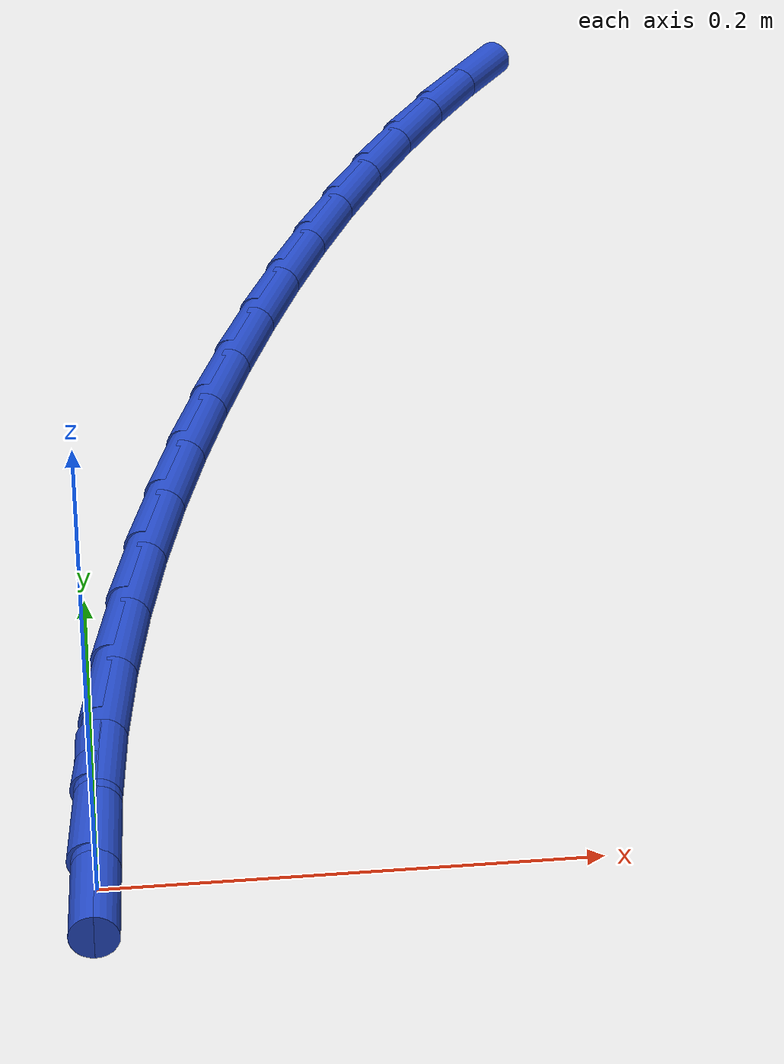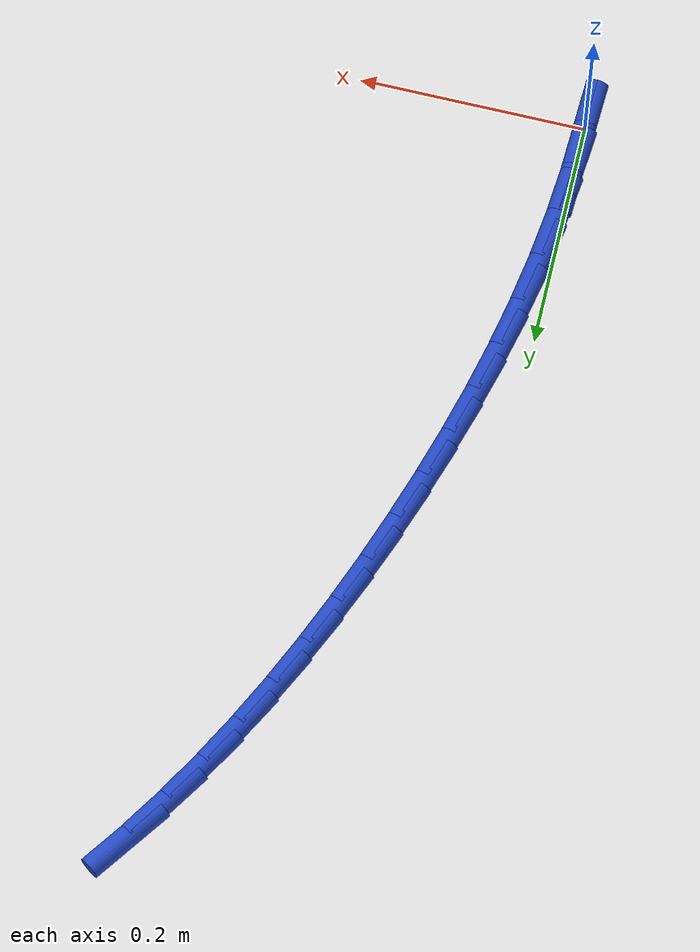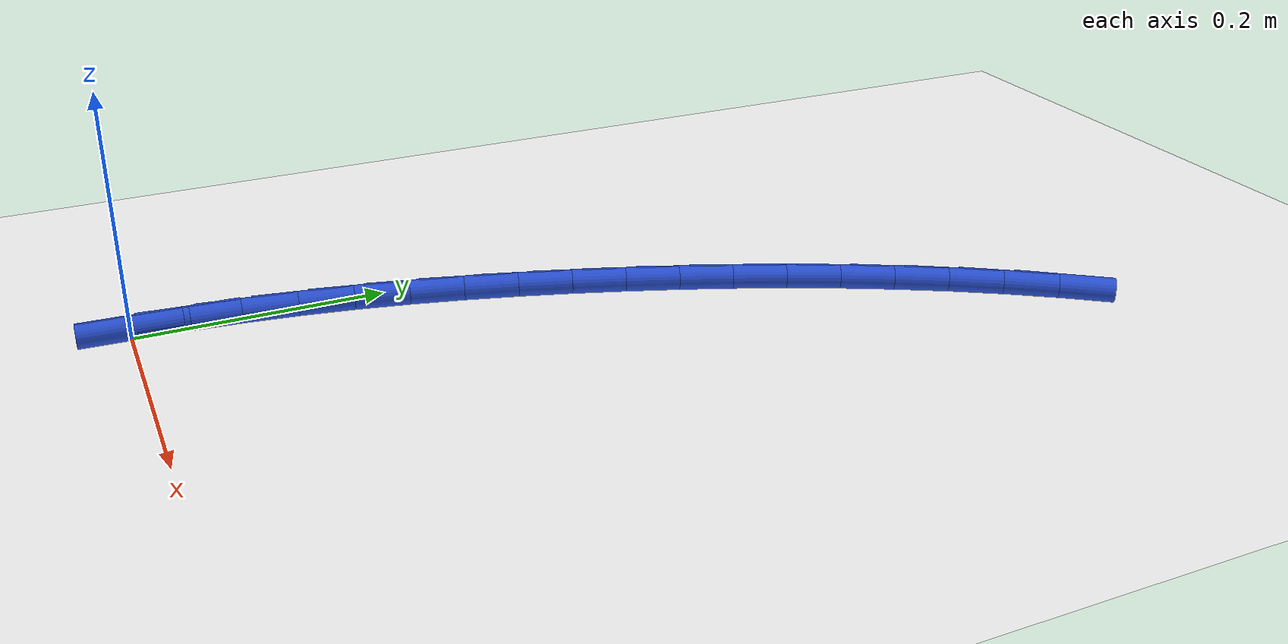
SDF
<sdf version="1.6">
 <world name="default">
  <model name="ground_plane">
   <static>1</static>
   <link name="link">
    <collision name="collision">
     <geometry><plane><normal>0 0 1</normal><size>100 100</size></plane></geometry>
     <surface><friction><ode><mu>100</mu><mu2>50</mu2></ode></friction></surface>
    </collision>
    <visual name="visual">
     <cast_shadows>0</cast_shadows>
     <geometry><plane><normal>0 0 1</normal><size>100 100</size></plane></geometry>
     <material>
      <script><uri>file://media/materials/scripts/gazebo.material</uri><name>Gazebo/WhiteGlow</name></script>
     </material>
    </visual>
   </link>
  </model>
  <model name="line">
   <link name="link_0">
    <pose>5.0306980803327406e-17 1.3877787807814457e-17 0.01 0 1.57 1.5260147244363123</pose>
    <collision name="collision">
     <geometry><cylinder><radius>0.01</radius><length>0.08</length></cylinder></geometry>
    </collision>
    <visual name="visual">
     <material>
      <script><name>Gazebo/Blue</name><uri>file://media/materials/scripts/gazebo.material</uri></script>
     </material>
     <geometry><cylinder><radius>0.01</radius><length>0.08</length></cylinder></geometry>
    </visual>
   </link>
   <link name="link_1">
    <pose>0.0019904885369562845 0.0444190847222737 0.01 0 1.57 1.4812232621702883</pose>
    <collision name="collision">
     <geometry><cylinder><radius>0.01</radius><length>0.08</length></cylinder></geometry>
    </collision>
    <visual name="visual">
     <material>
      <script><name>Gazebo/Blue</name><uri>file://media/materials/scripts/gazebo.material</uri></script>
     </material>
     <geometry><cylinder><radius>0.01</radius><length>0.08</length></cylinder></geometry>
    </visual>
   </link>
   <link name="link_2">
    <pose>0.005955106309354074 0.08856191898155275 0.01 0 1.57 1.439000569083363</pose>
    <collision name="collision">
     <geometry><cylinder><radius>0.01</radius><length>0.08</length></cylinder></geometry>
    </collision>
    <visual name="visual">
     <material>
      <script><name>Gazebo/Blue</name><uri>file://media/materials/scripts/gazebo.material</uri></script>
     </material>
     <geometry><cylinder><radius>0.01</radius><length>0.08</length></cylinder></geometry>
    </visual>
   </link>
   <link name="link_3">
    <pose>0.011770059089839587 0.13242710110053268 0.01 0 1.57 1.3994675310852336</pose>
    <collision name="collision">
     <geometry><cylinder><radius>0.01</radius><length>0.08</length></cylinder></geometry>
    </collision>
    <visual name="visual">
     <material>
      <script><name>Gazebo/Blue</name><uri>file://media/materials/scripts/gazebo.material</uri></script>
     </material>
     <geometry><cylinder><radius>0.01</radius><length>0.08</length></cylinder></geometry>
    </visual>
   </link>
   <link name="link_4">
    <pose>0.01931155265105896 0.17601322940190903 0.01 0 1.57 1.362697493794268</pose>
    <collision name="collision">
     <geometry><cylinder><radius>0.01</radius><length>0.08</length></cylinder></geometry>
    </collision>
    <visual name="visual">
     <material>
      <script><name>Gazebo/Blue</name><uri>file://media/materials/scripts/gazebo.material</uri></script>
     </material>
     <geometry><cylinder><radius>0.01</radius><length>0.08</length></cylinder></geometry>
    </visual>
   </link>
   <link name="link_5">
    <pose>0.028455792765658367 0.2193189022083774 0.01 0 1.57 1.3287240169238606</pose>
    <collision name="collision">
     <geometry><cylinder><radius>0.01</radius><length>0.08</length></cylinder></geometry>
    </collision>
    <visual name="visual">
     <material>
      <script><name>Gazebo/Blue</name><uri>file://media/materials/scripts/gazebo.material</uri></script>
     </material>
     <geometry><cylinder><radius>0.01</radius><length>0.08</length></cylinder></geometry>
    </visual>
   </link>
   <link name="link_6">
    <pose>0.03907898520628396 0.26234271784263336 0.01 0 1.57 1.2975490997938268</pose>
    <collision name="collision">
     <geometry><cylinder><radius>0.01</radius><length>0.08</length></cylinder></geometry>
    </collision>
    <visual name="visual">
     <material>
      <script><name>Gazebo/Blue</name><uri>file://media/materials/scripts/gazebo.material</uri></script>
     </material>
     <geometry><cylinder><radius>0.01</radius><length>0.08</length></cylinder></geometry>
    </visual>
   </link>
   <link name="link_7">
    <pose>0.0510573357455819 0.30508327462737245 0.01 0 1.57 1.2691512236758864</pose>
    <collision name="collision">
     <geometry><cylinder><radius>0.01</radius><length>0.08</length></cylinder></geometry>
    </collision>
    <visual name="visual">
     <material>
      <script><name>Gazebo/Blue</name><uri>file://media/materials/scripts/gazebo.material</uri></script>
     </material>
     <geometry><cylinder><radius>0.01</radius><length>0.08</length></cylinder></geometry>
    </visual>
   </link>
   <link name="link_8">
    <pose>0.06426705015619832 0.34753917088529 0.01 0 1.57 1.2434890691378662</pose>
    <collision name="collision">
     <geometry><cylinder><radius>0.01</radius><length>0.08</length></cylinder></geometry>
    </collision>
    <visual name="visual">
     <material>
      <script><name>Gazebo/Blue</name><uri>file://media/materials/scripts/gazebo.material</uri></script>
     </material>
     <geometry><cylinder><radius>0.01</radius><length>0.08</length></cylinder></geometry>
    </visual>
   </link>
   <link name="link_9">
    <pose>0.07858448455763797 0.38970893372503573 0.01 0 1.57 1.2192639421745357</pose>
    <collision name="collision">
     <geometry><cylinder><radius>0.01</radius><length>0.08</length></cylinder></geometry>
    </collision>
    <visual name="visual">
     <material>
      <script><name>Gazebo/Blue</name><uri>file://media/materials/scripts/gazebo.material</uri></script>
     </material>
     <geometry><cylinder><radius>0.01</radius><length>0.08</length></cylinder></geometry>
    </visual>
   </link>
   <link name="link_10">
    <pose>0.09393663902727978 0.4315671019845059 0.01 0 1.57 1.1933516240119146</pose>
    <collision name="collision">
     <geometry><cylinder><radius>0.01</radius><length>0.08</length></cylinder></geometry>
    </collision>
    <visual name="visual">
     <material>
      <script><name>Gazebo/Blue</name><uri>file://media/materials/scripts/gazebo.material</uri></script>
     </material>
     <geometry><cylinder><radius>0.01</radius><length>0.08</length></cylinder></geometry>
    </visual>
   </link>
   <link name="link_11">
    <pose>0.11037451438381249 0.4730294796893706 0.01 0 1.57 1.1652217401002263</pose>
    <collision name="collision">
     <geometry><cylinder><radius>0.01</radius><length>0.08</length></cylinder></geometry>
    </collision>
    <visual name="visual">
     <material>
      <script><name>Gazebo/Blue</name><uri>file://media/materials/scripts/gazebo.material</uri></script>
     </material>
     <geometry><cylinder><radius>0.01</radius><length>0.08</length></cylinder></geometry>
    </visual>
   </link>
   <link name="link_12">
    <pose>0.12796773982584467 0.5140030472535612 0.01 0 1.57 1.134805137264003</pose>
    <collision name="collision">
     <geometry><cylinder><radius>0.01</radius><length>0.08</length></cylinder></geometry>
    </collision>
    <visual name="visual">
     <material>
      <script><name>Gazebo/Blue</name><uri>file://media/materials/scripts/gazebo.material</uri></script>
     </material>
     <geometry><cylinder><radius>0.01</radius><length>0.08</length></cylinder></geometry>
    </visual>
   </link>
   <link name="link_13">
    <pose>0.1467859445519847 0.5543947850910084 0.01 0 1.57 1.1020382116200267</pose>
    <collision name="collision">
     <geometry><cylinder><radius>0.01</radius><length>0.08</length></cylinder></geometry>
    </collision>
    <visual name="visual">
     <material>
      <script><name>Gazebo/Blue</name><uri>file://media/materials/scripts/gazebo.material</uri></script>
     </material>
     <geometry><cylinder><radius>0.01</radius><length>0.08</length></cylinder></geometry>
    </visual>
   </link>
   <link name="link_14">
    <pose>0.16689875776084134 0.5941116736156439 0.01 0 1.57 1.0668678408947943</pose>
    <collision name="collision">
     <geometry><cylinder><radius>0.01</radius><length>0.08</length></cylinder></geometry>
    </collision>
    <visual name="visual">
     <material>
      <script><name>Gazebo/Blue</name><uri>file://media/materials/scripts/gazebo.material</uri></script>
     </material>
     <geometry><cylinder><radius>0.01</radius><length>0.08</length></cylinder></geometry>
    </visual>
   </link>
   <link name="link_15">
    <pose>0.18837580865102302 0.6330606932413984 0.01 0 1.57 1.029257130996938</pose>
    <collision name="collision">
     <geometry><cylinder><radius>0.01</radius><length>0.08</length></cylinder></geometry>
    </collision>
    <visual name="visual">
     <material>
      <script><name>Gazebo/Blue</name><uri>file://media/materials/scripts/gazebo.material</uri></script>
     </material>
     <geometry><cylinder><radius>0.01</radius><length>0.08</length></cylinder></geometry>
    </visual>
   </link>
   <link name="link_16">
    <pose>0.21128672642113833 0.6711488243822031 0.01 0 1.57 0.98919190727379</pose>
    <collision name="collision">
     <geometry><cylinder><radius>0.01</radius><length>0.08</length></cylinder></geometry>
    </collision>
    <visual name="visual">
     <material>
      <script><name>Gazebo/Blue</name><uri>file://media/materials/scripts/gazebo.material</uri></script>
     </material>
     <geometry><cylinder><radius>0.01</radius><length>0.08</length></cylinder></geometry>
    </visual>
   </link>
   <link name="link_17">
    <pose>0.23570114026979583 0.7082830474519894 0.01 0 1.57 0.9466877524308595</pose>
    <collision name="collision">
     <geometry><cylinder><radius>0.01</radius><length>0.08</length></cylinder></geometry>
    </collision>
    <visual name="visual">
     <material>
      <script><name>Gazebo/Blue</name><uri>file://media/materials/scripts/gazebo.material</uri></script>
     </material>
     <geometry><cylinder><radius>0.01</radius><length>0.08</length></cylinder></geometry>
    </visual>
   </link>
   <link name="link_160">
    <pose>5.724587470723463e-17 -1.1102230246251565e-16 0.01 0 1.57 1.525610144522365</pose>
    <collision name="collision">
     <geometry><cylinder><radius>0.01</radius><length>0.08</length></cylinder></geometry>
    </collision>
    <visual name="visual">
     <material>
      <script><name>Gazebo/Blue</name><uri>file://media/materials/scripts/gazebo.material</uri></script>
     </material>
     <geometry><cylinder><radius>0.01</radius><length>0.08</length></cylinder></geometry>
    </visual>
   </link>
   <link name="link_161">
    <pose>0.0020070890322856725 0.044387968326042936 0.01 0 1.57 1.5256101445223649</pose>
    <collision name="collision">
     <geometry><cylinder><radius>0.01</radius><length>0.08</length></cylinder></geometry>
    </collision>
    <visual name="visual">
     <material>
      <script><name>Gazebo/Blue</name><uri>file://media/materials/scripts/gazebo.material</uri></script>
     </material>
     <geometry><cylinder><radius>0.01</radius><length>0.08</length></cylinder></geometry>
    </visual>
   </link>
  </model>
 </world>
</sdf>
